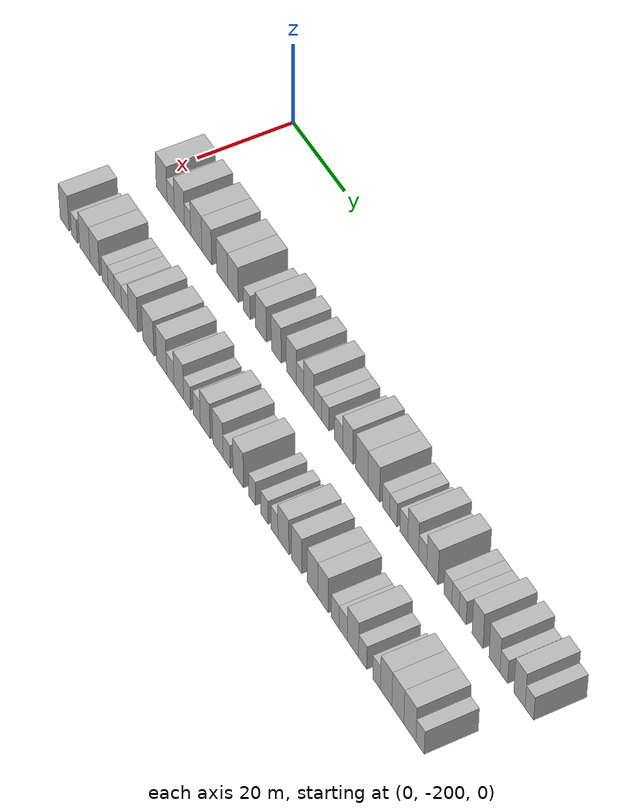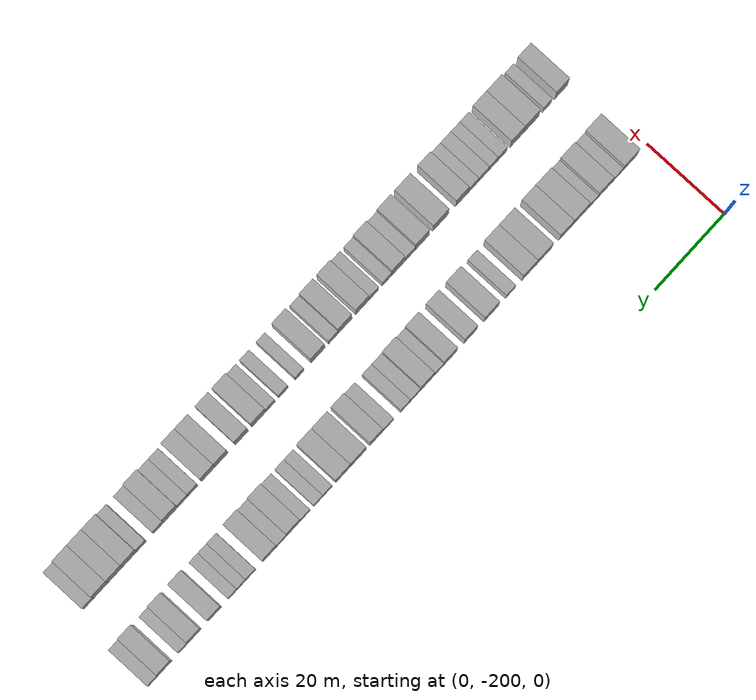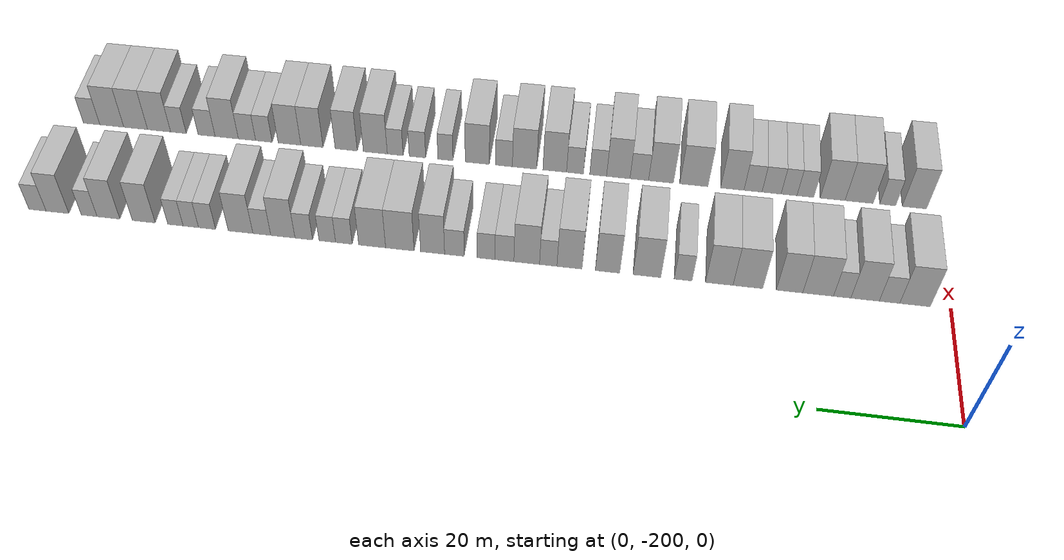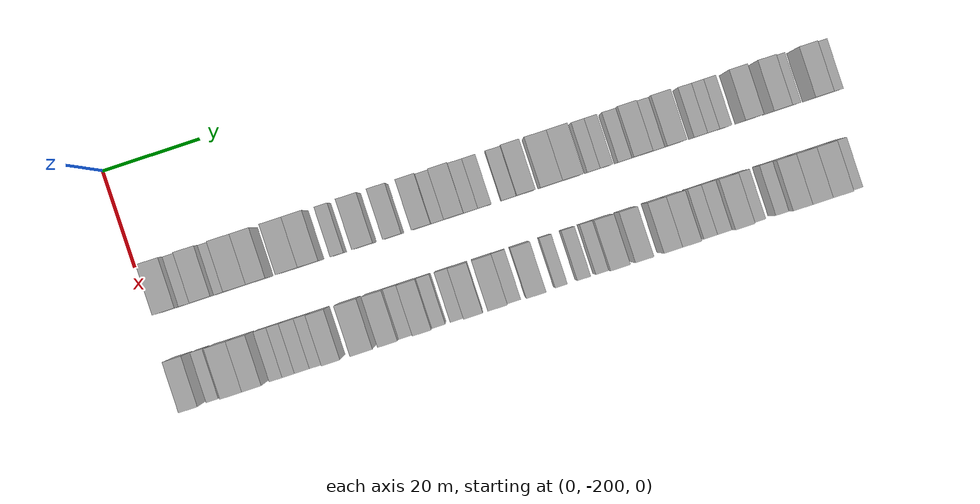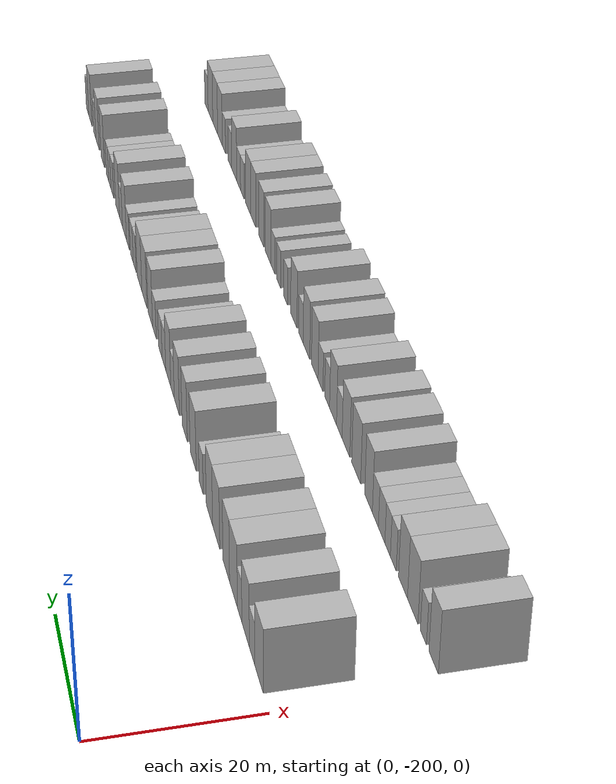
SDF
<sdf version="1.6">
 <world name="default">
  <model name="building_1">
   <static>1</static>
   <pose>25.0000 -194.7960 0 0.000000 0.000000 0.000000</pose>
   <link name="link">
    <pose>0 0 4.50 0 0 0</pose>
    <collision name="collision"><geometry><box><size>10.0000 4.4080 9.0000</size></box></geometry></collision>
    <visual name="visual">
     <cast_shadows>0</cast_shadows>
     <geometry><box><size>10.0000 4.4080 9.0000</size></box></geometry>
     <material>
      <script>
       <uri>model://HANNAS_wall/materials/scripts</uri>
       <uri>model://HANNAS_wall/materials/textures</uri>
       <name>vrc/HANNAS_wall</name>
      </script>
     </material>
    </visual>
   </link>
  </model>
  <model name="building_2">
   <static>1</static>
   <pose>25.0000 -191.1153 0 0.000000 0.000000 0.000000</pose>
   <link name="link">
    <pose>0 0 3.00 0 0 0</pose>
    <collision name="collision"><geometry><box><size>10.0000 2.9534 6.0000</size></box></geometry></collision>
    <visual name="visual">
     <cast_shadows>0</cast_shadows>
     <geometry><box><size>10.0000 2.9534 6.0000</size></box></geometry>
     <material>
      <script>
       <uri>model://HANNAS_wall/materials/scripts</uri>
       <uri>model://HANNAS_wall/materials/textures</uri>
       <name>vrc/HANNAS_wall</name>
      </script>
     </material>
    </visual>
   </link>
  </model>
  <model name="building_3">
   <static>1</static>
   <pose>25.0000 -187.5789 0 0.000000 0.000000 0.000000</pose>
   <link name="link">
    <pose>0 0 4.50 0 0 0</pose>
    <collision name="collision"><geometry><box><size>10.0000 4.1194 9.0000</size></box></geometry></collision>
    <visual name="visual">
     <cast_shadows>0</cast_shadows>
     <geometry><box><size>10.0000 4.1194 9.0000</size></box></geometry>
     <material>
      <script>
       <uri>model://HANNAS_wall/materials/scripts</uri>
       <uri>model://HANNAS_wall/materials/textures</uri>
       <name>vrc/HANNAS_wall</name>
      </script>
     </material>
    </visual>
   </link>
  </model>
  <model name="building_4">
   <static>1</static>
   <pose>25.0000 -184.2555 0 0.000000 0.000000 0.000000</pose>
   <link name="link">
    <pose>0 0 3.00 0 0 0</pose>
    <collision name="collision"><geometry><box><size>10.0000 2.5275 6.0000</size></box></geometry></collision>
    <visual name="visual">
     <cast_shadows>0</cast_shadows>
     <geometry><box><size>10.0000 2.5275 6.0000</size></box></geometry>
     <material>
      <script>
       <uri>model://HANNAS_wall/materials/scripts</uri>
       <uri>model://HANNAS_wall/materials/textures</uri>
       <name>vrc/HANNAS_wall</name>
      </script>
     </material>
    </visual>
   </link>
  </model>
  <model name="building_5">
   <static>1</static>
   <pose>25.0000 -180.7464 0 0.000000 0.000000 0.000000</pose>
   <link name="link">
    <pose>0 0 4.50 0 0 0</pose>
    <collision name="collision"><geometry><box><size>10.0000 4.4906 9.0000</size></box></geometry></collision>
    <visual name="visual">
     <cast_shadows>0</cast_shadows>
     <geometry><box><size>10.0000 4.4906 9.0000</size></box></geometry>
     <material>
      <script>
       <uri>model://HANNAS_wall/materials/scripts</uri>
       <uri>model://HANNAS_wall/materials/textures</uri>
       <name>vrc/HANNAS_wall</name>
      </script>
     </material>
    </visual>
   </link>
  </model>
  <model name="building_6">
   <static>1</static>
   <pose>25.0000 -176.5654 0 0.000000 0.000000 0.000000</pose>
   <link name="link">
    <pose>0 0 4.50 0 0 0</pose>
    <collision name="collision"><geometry><box><size>10.0000 3.8715 9.0000</size></box></geometry></collision>
    <visual name="visual">
     <cast_shadows>0</cast_shadows>
     <geometry><box><size>10.0000 3.8715 9.0000</size></box></geometry>
     <material>
      <script>
       <uri>model://HANNAS_wall/materials/scripts</uri>
       <uri>model://HANNAS_wall/materials/textures</uri>
       <name>vrc/HANNAS_wall</name>
      </script>
     </material>
    </visual>
   </link>
  </model>
  <model name="building_7">
   <static>1</static>
   <pose>25.0000 -170.4385 0 0.000000 0.000000 0.000000</pose>
   <link name="link">
    <pose>0 0 4.50 0 0 0</pose>
    <collision name="collision"><geometry><box><size>10.0000 4.3822 9.0000</size></box></geometry></collision>
    <visual name="visual">
     <cast_shadows>0</cast_shadows>
     <geometry><box><size>10.0000 4.3822 9.0000</size></box></geometry>
     <material>
      <script>
       <uri>model://HANNAS_wall/materials/scripts</uri>
       <uri>model://HANNAS_wall/materials/textures</uri>
       <name>vrc/HANNAS_wall</name>
      </script>
     </material>
    </visual>
   </link>
  </model>
  <model name="building_8">
   <static>1</static>
   <pose>25.0000 -166.2116 0 0.000000 0.000000 0.000000</pose>
   <link name="link">
    <pose>0 0 4.50 0 0 0</pose>
    <collision name="collision"><geometry><box><size>10.0000 4.0716 9.0000</size></box></geometry></collision>
    <visual name="visual">
     <cast_shadows>0</cast_shadows>
     <geometry><box><size>10.0000 4.0716 9.0000</size></box></geometry>
     <material>
      <script>
       <uri>model://HANNAS_wall/materials/scripts</uri>
       <uri>model://HANNAS_wall/materials/textures</uri>
       <name>vrc/HANNAS_wall</name>
      </script>
     </material>
    </visual>
   </link>
  </model>
  <model name="building_9">
   <static>1</static>
   <pose>25.0000 -160.8473 0 0.000000 0.000000 0.000000</pose>
   <link name="link">
    <pose>0 0 3.00 0 0 0</pose>
    <collision name="collision"><geometry><box><size>10.0000 2.6569 6.0000</size></box></geometry></collision>
    <visual name="visual">
     <cast_shadows>0</cast_shadows>
     <geometry><box><size>10.0000 2.6569 6.0000</size></box></geometry>
     <material>
      <script>
       <uri>model://HANNAS_wall/materials/scripts</uri>
       <uri>model://HANNAS_wall/materials/textures</uri>
       <name>vrc/HANNAS_wall</name>
      </script>
     </material>
    </visual>
   </link>
  </model>
  <model name="building_10">
   <static>1</static>
   <pose>25.0000 -155.4510 0 0.000000 0.000000 0.000000</pose>
   <link name="link">
    <pose>0 0 4.50 0 0 0</pose>
    <collision name="collision"><geometry><box><size>10.0000 4.1359 9.0000</size></box></geometry></collision>
    <visual name="visual">
     <cast_shadows>0</cast_shadows>
     <geometry><box><size>10.0000 4.1359 9.0000</size></box></geometry>
     <material>
      <script>
       <uri>model://HANNAS_wall/materials/scripts</uri>
       <uri>model://HANNAS_wall/materials/textures</uri>
       <name>vrc/HANNAS_wall</name>
      </script>
     </material>
    </visual>
   </link>
  </model>
  <model name="building_11">
   <static>1</static>
   <pose>25.0000 -149.5526 0 0.000000 0.000000 0.000000</pose>
   <link name="link">
    <pose>0 0 4.50 0 0 0</pose>
    <collision name="collision"><geometry><box><size>10.0000 3.6609 9.0000</size></box></geometry></collision>
    <visual name="visual">
     <cast_shadows>0</cast_shadows>
     <geometry><box><size>10.0000 3.6609 9.0000</size></box></geometry>
     <material>
      <script>
       <uri>model://HANNAS_wall/materials/scripts</uri>
       <uri>model://HANNAS_wall/materials/textures</uri>
       <name>vrc/HANNAS_wall</name>
      </script>
     </material>
    </visual>
   </link>
  </model>
  <model name="building_12">
   <static>1</static>
   <pose>25.0000 -143.8289 0 0.000000 0.000000 0.000000</pose>
   <link name="link">
    <pose>0 0 4.50 0 0 0</pose>
    <collision name="collision"><geometry><box><size>10.0000 3.7866 9.0000</size></box></geometry></collision>
    <visual name="visual">
     <cast_shadows>0</cast_shadows>
     <geometry><box><size>10.0000 3.7866 9.0000</size></box></geometry>
     <material>
      <script>
       <uri>model://HANNAS_wall/materials/scripts</uri>
       <uri>model://HANNAS_wall/materials/textures</uri>
       <name>vrc/HANNAS_wall</name>
      </script>
     </material>
    </visual>
   </link>
  </model>
  <model name="building_13">
   <static>1</static>
   <pose>25.0000 -140.6189 0 0.000000 0.000000 0.000000</pose>
   <link name="link">
    <pose>0 0 3.00 0 0 0</pose>
    <collision name="collision"><geometry><box><size>10.0000 2.6333 6.0000</size></box></geometry></collision>
    <visual name="visual">
     <cast_shadows>0</cast_shadows>
     <geometry><box><size>10.0000 2.6333 6.0000</size></box></geometry>
     <material>
      <script>
       <uri>model://HANNAS_wall/materials/scripts</uri>
       <uri>model://HANNAS_wall/materials/textures</uri>
       <name>vrc/HANNAS_wall</name>
      </script>
     </material>
    </visual>
   </link>
  </model>
  <model name="building_14">
   <static>1</static>
   <pose>25.0000 -137.3544 0 0.000000 0.000000 0.000000</pose>
   <link name="link">
    <pose>0 0 4.50 0 0 0</pose>
    <collision name="collision"><geometry><box><size>10.0000 3.8957 9.0000</size></box></geometry></collision>
    <visual name="visual">
     <cast_shadows>0</cast_shadows>
     <geometry><box><size>10.0000 3.8957 9.0000</size></box></geometry>
     <material>
      <script>
       <uri>model://HANNAS_wall/materials/scripts</uri>
       <uri>model://HANNAS_wall/materials/textures</uri>
       <name>vrc/HANNAS_wall</name>
      </script>
     </material>
    </visual>
   </link>
  </model>
  <model name="building_15">
   <static>1</static>
   <pose>25.0000 -133.9715 0 0.000000 0.000000 0.000000</pose>
   <link name="link">
    <pose>0 0 3.00 0 0 0</pose>
    <collision name="collision"><geometry><box><size>10.0000 2.8702 6.0000</size></box></geometry></collision>
    <visual name="visual">
     <cast_shadows>0</cast_shadows>
     <geometry><box><size>10.0000 2.8702 6.0000</size></box></geometry>
     <material>
      <script>
       <uri>model://HANNAS_wall/materials/scripts</uri>
       <uri>model://HANNAS_wall/materials/textures</uri>
       <name>vrc/HANNAS_wall</name>
      </script>
     </material>
    </visual>
   </link>
  </model>
  <model name="building_16">
   <static>1</static>
   <pose>25.0000 -131.1850 0 0.000000 0.000000 0.000000</pose>
   <link name="link">
    <pose>0 0 3.00 0 0 0</pose>
    <collision name="collision"><geometry><box><size>10.0000 2.7028 6.0000</size></box></geometry></collision>
    <visual name="visual">
     <cast_shadows>0</cast_shadows>
     <geometry><box><size>10.0000 2.7028 6.0000</size></box></geometry>
     <material>
      <script>
       <uri>model://HANNAS_wall/materials/scripts</uri>
       <uri>model://HANNAS_wall/materials/textures</uri>
       <name>vrc/HANNAS_wall</name>
      </script>
     </material>
    </visual>
   </link>
  </model>
  <model name="building_17">
   <static>1</static>
   <pose>25.0000 -126.3349 0 0.000000 0.000000 0.000000</pose>
   <link name="link">
    <pose>0 0 3.00 0 0 0</pose>
    <collision name="collision"><geometry><box><size>10.0000 2.9974 6.0000</size></box></geometry></collision>
    <visual name="visual">
     <cast_shadows>0</cast_shadows>
     <geometry><box><size>10.0000 2.9974 6.0000</size></box></geometry>
     <material>
      <script>
       <uri>model://HANNAS_wall/materials/scripts</uri>
       <uri>model://HANNAS_wall/materials/textures</uri>
       <name>vrc/HANNAS_wall</name>
      </script>
     </material>
    </visual>
   </link>
  </model>
  <model name="building_18">
   <static>1</static>
   <pose>25.0000 -122.9939 0 0.000000 0.000000 0.000000</pose>
   <link name="link">
    <pose>0 0 4.50 0 0 0</pose>
    <collision name="collision"><geometry><box><size>10.0000 3.6844 9.0000</size></box></geometry></collision>
    <visual name="visual">
     <cast_shadows>0</cast_shadows>
     <geometry><box><size>10.0000 3.6844 9.0000</size></box></geometry>
     <material>
      <script>
       <uri>model://HANNAS_wall/materials/scripts</uri>
       <uri>model://HANNAS_wall/materials/textures</uri>
       <name>vrc/HANNAS_wall</name>
      </script>
     </material>
    </visual>
   </link>
  </model>
  <model name="building_19">
   <static>1</static>
   <pose>25.0000 -117.9512 0 0.000000 0.000000 0.000000</pose>
   <link name="link">
    <pose>0 0 4.50 0 0 0</pose>
    <collision name="collision"><geometry><box><size>10.0000 4.4010 9.0000</size></box></geometry></collision>
    <visual name="visual">
     <cast_shadows>0</cast_shadows>
     <geometry><box><size>10.0000 4.4010 9.0000</size></box></geometry>
     <material>
      <script>
       <uri>model://HANNAS_wall/materials/scripts</uri>
       <uri>model://HANNAS_wall/materials/textures</uri>
       <name>vrc/HANNAS_wall</name>
      </script>
     </material>
    </visual>
   </link>
  </model>
  <model name="building_20">
   <static>1</static>
   <pose>25.0000 -113.6658 0 0.000000 0.000000 0.000000</pose>
   <link name="link">
    <pose>0 0 4.50 0 0 0</pose>
    <collision name="collision"><geometry><box><size>10.0000 4.1699 9.0000</size></box></geometry></collision>
    <visual name="visual">
     <cast_shadows>0</cast_shadows>
     <geometry><box><size>10.0000 4.1699 9.0000</size></box></geometry>
     <material>
      <script>
       <uri>model://HANNAS_wall/materials/scripts</uri>
       <uri>model://HANNAS_wall/materials/textures</uri>
       <name>vrc/HANNAS_wall</name>
      </script>
     </material>
    </visual>
   </link>
  </model>
  <model name="building_21">
   <static>1</static>
   <pose>25.0000 -109.2835 0 0.000000 0.000000 0.000000</pose>
   <link name="link">
    <pose>0 0 3.00 0 0 0</pose>
    <collision name="collision"><geometry><box><size>10.0000 2.5947 6.0000</size></box></geometry></collision>
    <visual name="visual">
     <cast_shadows>0</cast_shadows>
     <geometry><box><size>10.0000 2.5947 6.0000</size></box></geometry>
     <material>
      <script>
       <uri>model://HANNAS_wall/materials/scripts</uri>
       <uri>model://HANNAS_wall/materials/textures</uri>
       <name>vrc/HANNAS_wall</name>
      </script>
     </material>
    </visual>
   </link>
  </model>
  <model name="building_22">
   <static>1</static>
   <pose>25.0000 -106.6985 0 0.000000 0.000000 0.000000</pose>
   <link name="link">
    <pose>0 0 3.00 0 0 0</pose>
    <collision name="collision"><geometry><box><size>10.0000 2.5752 6.0000</size></box></geometry></collision>
    <visual name="visual">
     <cast_shadows>0</cast_shadows>
     <geometry><box><size>10.0000 2.5752 6.0000</size></box></geometry>
     <material>
      <script>
       <uri>model://HANNAS_wall/materials/scripts</uri>
       <uri>model://HANNAS_wall/materials/textures</uri>
       <name>vrc/HANNAS_wall</name>
      </script>
     </material>
    </visual>
   </link>
  </model>
  <model name="building_23">
   <static>1</static>
   <pose>25.0000 -103.0268 0 0.000000 0.000000 0.000000</pose>
   <link name="link">
    <pose>0 0 3.00 0 0 0</pose>
    <collision name="collision"><geometry><box><size>10.0000 2.7683 6.0000</size></box></geometry></collision>
    <visual name="visual">
     <cast_shadows>0</cast_shadows>
     <geometry><box><size>10.0000 2.7683 6.0000</size></box></geometry>
     <material>
      <script>
       <uri>model://HANNAS_wall/materials/scripts</uri>
       <uri>model://HANNAS_wall/materials/textures</uri>
       <name>vrc/HANNAS_wall</name>
      </script>
     </material>
    </visual>
   </link>
  </model>
  <model name="building_24">
   <static>1</static>
   <pose>25.0000 -99.7473 0 0.000000 0.000000 0.000000</pose>
   <link name="link">
    <pose>0 0 4.50 0 0 0</pose>
    <collision name="collision"><geometry><box><size>10.0000 3.7907 9.0000</size></box></geometry></collision>
    <visual name="visual">
     <cast_shadows>0</cast_shadows>
     <geometry><box><size>10.0000 3.7907 9.0000</size></box></geometry>
     <material>
      <script>
       <uri>model://HANNAS_wall/materials/scripts</uri>
       <uri>model://HANNAS_wall/materials/textures</uri>
       <name>vrc/HANNAS_wall</name>
      </script>
     </material>
    </visual>
   </link>
  </model>
  <model name="building_25">
   <static>1</static>
   <pose>25.0000 -96.4427 0 0.000000 0.000000 0.000000</pose>
   <link name="link">
    <pose>0 0 3.00 0 0 0</pose>
    <collision name="collision"><geometry><box><size>10.0000 2.8184 6.0000</size></box></geometry></collision>
    <visual name="visual">
     <cast_shadows>0</cast_shadows>
     <geometry><box><size>10.0000 2.8184 6.0000</size></box></geometry>
     <material>
      <script>
       <uri>model://HANNAS_wall/materials/scripts</uri>
       <uri>model://HANNAS_wall/materials/textures</uri>
       <name>vrc/HANNAS_wall</name>
      </script>
     </material>
    </visual>
   </link>
  </model>
  <model name="building_26">
   <static>1</static>
   <pose>25.0000 -93.0853 0 0.000000 0.000000 0.000000</pose>
   <link name="link">
    <pose>0 0 4.50 0 0 0</pose>
    <collision name="collision"><geometry><box><size>10.0000 3.8963 9.0000</size></box></geometry></collision>
    <visual name="visual">
     <cast_shadows>0</cast_shadows>
     <geometry><box><size>10.0000 3.8963 9.0000</size></box></geometry>
     <material>
      <script>
       <uri>model://HANNAS_wall/materials/scripts</uri>
       <uri>model://HANNAS_wall/materials/textures</uri>
       <name>vrc/HANNAS_wall</name>
      </script>
     </material>
    </visual>
   </link>
  </model>
  <model name="building_27">
   <static>1</static>
   <pose>25.0000 -87.7885 0 0.000000 0.000000 0.000000</pose>
   <link name="link">
    <pose>0 0 3.00 0 0 0</pose>
    <collision name="collision"><geometry><box><size>10.0000 2.6974 6.0000</size></box></geometry></collision>
    <visual name="visual">
     <cast_shadows>0</cast_shadows>
     <geometry><box><size>10.0000 2.6974 6.0000</size></box></geometry>
     <material>
      <script>
       <uri>model://HANNAS_wall/materials/scripts</uri>
       <uri>model://HANNAS_wall/materials/textures</uri>
       <name>vrc/HANNAS_wall</name>
      </script>
     </material>
    </visual>
   </link>
  </model>
  <model name="building_28">
   <static>1</static>
   <pose>25.0000 -85.2191 0 0.000000 0.000000 0.000000</pose>
   <link name="link">
    <pose>0 0 3.00 0 0 0</pose>
    <collision name="collision"><geometry><box><size>10.0000 2.4414 6.0000</size></box></geometry></collision>
    <visual name="visual">
     <cast_shadows>0</cast_shadows>
     <geometry><box><size>10.0000 2.4414 6.0000</size></box></geometry>
     <material>
      <script>
       <uri>model://HANNAS_wall/materials/scripts</uri>
       <uri>model://HANNAS_wall/materials/textures</uri>
       <name>vrc/HANNAS_wall</name>
      </script>
     </material>
    </visual>
   </link>
  </model>
  <model name="building_29">
   <static>1</static>
   <pose>25.0000 -82.7759 0 0.000000 0.000000 0.000000</pose>
   <link name="link">
    <pose>0 0 3.00 0 0 0</pose>
    <collision name="collision"><geometry><box><size>10.0000 2.4450 6.0000</size></box></geometry></collision>
    <visual name="visual">
     <cast_shadows>0</cast_shadows>
     <geometry><box><size>10.0000 2.4450 6.0000</size></box></geometry>
     <material>
      <script>
       <uri>model://HANNAS_wall/materials/scripts</uri>
       <uri>model://HANNAS_wall/materials/textures</uri>
       <name>vrc/HANNAS_wall</name>
      </script>
     </material>
    </visual>
   </link>
  </model>
  <model name="building_30">
   <static>1</static>
   <pose>25.0000 -77.7228 0 0.000000 0.000000 0.000000</pose>
   <link name="link">
    <pose>0 0 4.50 0 0 0</pose>
    <collision name="collision"><geometry><box><size>10.0000 3.6612 9.0000</size></box></geometry></collision>
    <visual name="visual">
     <cast_shadows>0</cast_shadows>
     <geometry><box><size>10.0000 3.6612 9.0000</size></box></geometry>
     <material>
      <script>
       <uri>model://HANNAS_wall/materials/scripts</uri>
       <uri>model://HANNAS_wall/materials/textures</uri>
       <name>vrc/HANNAS_wall</name>
      </script>
     </material>
    </visual>
   </link>
  </model>
  <model name="building_31">
   <static>1</static>
   <pose>25.0000 -72.0652 0 0.000000 0.000000 0.000000</pose>
   <link name="link">
    <pose>0 0 4.50 0 0 0</pose>
    <collision name="collision"><geometry><box><size>10.0000 3.6539 9.0000</size></box></geometry></collision>
    <visual name="visual">
     <cast_shadows>0</cast_shadows>
     <geometry><box><size>10.0000 3.6539 9.0000</size></box></geometry>
     <material>
      <script>
       <uri>model://HANNAS_wall/materials/scripts</uri>
       <uri>model://HANNAS_wall/materials/textures</uri>
       <name>vrc/HANNAS_wall</name>
      </script>
     </material>
    </visual>
   </link>
  </model>
  <model name="building_32">
   <static>1</static>
   <pose>25.0000 -68.9615 0 0.000000 0.000000 0.000000</pose>
   <link name="link">
    <pose>0 0 3.00 0 0 0</pose>
    <collision name="collision"><geometry><box><size>10.0000 2.5535 6.0000</size></box></geometry></collision>
    <visual name="visual">
     <cast_shadows>0</cast_shadows>
     <geometry><box><size>10.0000 2.5535 6.0000</size></box></geometry>
     <material>
      <script>
       <uri>model://HANNAS_wall/materials/scripts</uri>
       <uri>model://HANNAS_wall/materials/textures</uri>
       <name>vrc/HANNAS_wall</name>
      </script>
     </material>
    </visual>
   </link>
  </model>
  <model name="building_33">
   <static>1</static>
   <pose>25.0000 -63.8463 0 0.000000 0.000000 0.000000</pose>
   <link name="link">
    <pose>0 0 4.50 0 0 0</pose>
    <collision name="collision"><geometry><box><size>10.0000 3.6770 9.0000</size></box></geometry></collision>
    <visual name="visual">
     <cast_shadows>0</cast_shadows>
     <geometry><box><size>10.0000 3.6770 9.0000</size></box></geometry>
     <material>
      <script>
       <uri>model://HANNAS_wall/materials/scripts</uri>
       <uri>model://HANNAS_wall/materials/textures</uri>
       <name>vrc/HANNAS_wall</name>
      </script>
     </material>
    </visual>
   </link>
  </model>
  <model name="building_34">
   <static>1</static>
   <pose>25.0000 -60.6157 0 0.000000 0.000000 0.000000</pose>
   <link name="link">
    <pose>0 0 3.00 0 0 0</pose>
    <collision name="collision"><geometry><box><size>10.0000 2.7843 6.0000</size></box></geometry></collision>
    <visual name="visual">
     <cast_shadows>0</cast_shadows>
     <geometry><box><size>10.0000 2.7843 6.0000</size></box></geometry>
     <material>
      <script>
       <uri>model://HANNAS_wall/materials/scripts</uri>
       <uri>model://HANNAS_wall/materials/textures</uri>
       <name>vrc/HANNAS_wall</name>
      </script>
     </material>
    </visual>
   </link>
  </model>
  <model name="building_104">
   <static>1</static>
   <pose>44.0000 -196.1363 0 0.000000 0.000000 0.000000</pose>
   <link name="link">
    <pose>0 0 4.50 0 0 0</pose>
    <collision name="collision"><geometry><box><size>10.0000 3.7273 9.0000</size></box></geometry></collision>
    <visual name="visual">
     <cast_shadows>0</cast_shadows>
     <geometry><box><size>10.0000 3.7273 9.0000</size></box></geometry>
     <material>
      <script>
       <uri>model://HANNAS_wall/materials/scripts</uri>
       <uri>model://HANNAS_wall/materials/textures</uri>
       <name>vrc/HANNAS_wall</name>
      </script>
     </material>
    </visual>
   </link>
  </model>
  <model name="building_105">
   <static>1</static>
   <pose>44.0000 -192.0449 0 0.000000 0.000000 0.000000</pose>
   <link name="link">
    <pose>0 0 3.00 0 0 0</pose>
    <collision name="collision"><geometry><box><size>10.0000 2.4555 6.0000</size></box></geometry></collision>
    <visual name="visual">
     <cast_shadows>0</cast_shadows>
     <geometry><box><size>10.0000 2.4555 6.0000</size></box></geometry>
     <material>
      <script>
       <uri>model://HANNAS_wall/materials/scripts</uri>
       <uri>model://HANNAS_wall/materials/textures</uri>
       <name>vrc/HANNAS_wall</name>
      </script>
     </material>
    </visual>
   </link>
  </model>
  <model name="building_106">
   <static>1</static>
   <pose>44.0000 -187.6453 0 0.000000 0.000000 0.000000</pose>
   <link name="link">
    <pose>0 0 4.50 0 0 0</pose>
    <collision name="collision"><geometry><box><size>10.0000 4.3438 9.0000</size></box></geometry></collision>
    <visual name="visual">
     <cast_shadows>0</cast_shadows>
     <geometry><box><size>10.0000 4.3438 9.0000</size></box></geometry>
     <material>
      <script>
       <uri>model://HANNAS_wall/materials/scripts</uri>
       <uri>model://HANNAS_wall/materials/textures</uri>
       <name>vrc/HANNAS_wall</name>
      </script>
     </material>
    </visual>
   </link>
  </model>
  <model name="building_107">
   <static>1</static>
   <pose>44.0000 -183.5447 0 0.000000 0.000000 0.000000</pose>
   <link name="link">
    <pose>0 0 4.50 0 0 0</pose>
    <collision name="collision"><geometry><box><size>10.0000 3.8574 9.0000</size></box></geometry></collision>
    <visual name="visual">
     <cast_shadows>0</cast_shadows>
     <geometry><box><size>10.0000 3.8574 9.0000</size></box></geometry>
     <material>
      <script>
       <uri>model://HANNAS_wall/materials/scripts</uri>
       <uri>model://HANNAS_wall/materials/textures</uri>
       <name>vrc/HANNAS_wall</name>
      </script>
     </material>
    </visual>
   </link>
  </model>
  <model name="building_108">
   <static>1</static>
   <pose>44.0000 -179.3143 0 0.000000 0.000000 0.000000</pose>
   <link name="link">
    <pose>0 0 3.00 0 0 0</pose>
    <collision name="collision"><geometry><box><size>10.0000 2.6033 6.0000</size></box></geometry></collision>
    <visual name="visual">
     <cast_shadows>0</cast_shadows>
     <geometry><box><size>10.0000 2.6033 6.0000</size></box></geometry>
     <material>
      <script>
       <uri>model://HANNAS_wall/materials/scripts</uri>
       <uri>model://HANNAS_wall/materials/textures</uri>
       <name>vrc/HANNAS_wall</name>
      </script>
     </material>
    </visual>
   </link>
  </model>
  <model name="building_109">
   <static>1</static>
   <pose>44.0000 -176.7770 0 0.000000 0.000000 0.000000</pose>
   <link name="link">
    <pose>0 0 3.00 0 0 0</pose>
    <collision name="collision"><geometry><box><size>10.0000 2.4714 6.0000</size></box></geometry></collision>
    <visual name="visual">
     <cast_shadows>0</cast_shadows>
     <geometry><box><size>10.0000 2.4714 6.0000</size></box></geometry>
     <material>
      <script>
       <uri>model://HANNAS_wall/materials/scripts</uri>
       <uri>model://HANNAS_wall/materials/textures</uri>
       <name>vrc/HANNAS_wall</name>
      </script>
     </material>
    </visual>
   </link>
  </model>
  <model name="building_110">
   <static>1</static>
   <pose>44.0000 -174.0483 0 0.000000 0.000000 0.000000</pose>
   <link name="link">
    <pose>0 0 3.00 0 0 0</pose>
    <collision name="collision"><geometry><box><size>10.0000 2.9860 6.0000</size></box></geometry></collision>
    <visual name="visual">
     <cast_shadows>0</cast_shadows>
     <geometry><box><size>10.0000 2.9860 6.0000</size></box></geometry>
     <material>
      <script>
       <uri>model://HANNAS_wall/materials/scripts</uri>
       <uri>model://HANNAS_wall/materials/textures</uri>
       <name>vrc/HANNAS_wall</name>
      </script>
     </material>
    </visual>
   </link>
  </model>
  <model name="building_111">
   <static>1</static>
   <pose>44.0000 -171.1443 0 0.000000 0.000000 0.000000</pose>
   <link name="link">
    <pose>0 0 3.00 0 0 0</pose>
    <collision name="collision"><geometry><box><size>10.0000 2.8219 6.0000</size></box></geometry></collision>
    <visual name="visual">
     <cast_shadows>0</cast_shadows>
     <geometry><box><size>10.0000 2.8219 6.0000</size></box></geometry>
     <material>
      <script>
       <uri>model://HANNAS_wall/materials/scripts</uri>
       <uri>model://HANNAS_wall/materials/textures</uri>
       <name>vrc/HANNAS_wall</name>
      </script>
     </material>
    </visual>
   </link>
  </model>
  <model name="building_112">
   <static>1</static>
   <pose>44.0000 -167.9012 0 0.000000 0.000000 0.000000</pose>
   <link name="link">
    <pose>0 0 4.50 0 0 0</pose>
    <collision name="collision"><geometry><box><size>10.0000 3.6642 9.0000</size></box></geometry></collision>
    <visual name="visual">
     <cast_shadows>0</cast_shadows>
     <geometry><box><size>10.0000 3.6642 9.0000</size></box></geometry>
     <material>
      <script>
       <uri>model://HANNAS_wall/materials/scripts</uri>
       <uri>model://HANNAS_wall/materials/textures</uri>
       <name>vrc/HANNAS_wall</name>
      </script>
     </material>
    </visual>
   </link>
  </model>
  <model name="building_113">
   <static>1</static>
   <pose>44.0000 -161.8467 0 0.000000 0.000000 0.000000</pose>
   <link name="link">
    <pose>0 0 4.50 0 0 0</pose>
    <collision name="collision"><geometry><box><size>10.0000 4.4449 9.0000</size></box></geometry></collision>
    <visual name="visual">
     <cast_shadows>0</cast_shadows>
     <geometry><box><size>10.0000 4.4449 9.0000</size></box></geometry>
     <material>
      <script>
       <uri>model://HANNAS_wall/materials/scripts</uri>
       <uri>model://HANNAS_wall/materials/textures</uri>
       <name>vrc/HANNAS_wall</name>
      </script>
     </material>
    </visual>
   </link>
  </model>
  <model name="building_114">
   <static>1</static>
   <pose>44.0000 -156.6502 0 0.000000 0.000000 0.000000</pose>
   <link name="link">
    <pose>0 0 4.50 0 0 0</pose>
    <collision name="collision"><geometry><box><size>10.0000 3.9481 9.0000</size></box></geometry></collision>
    <visual name="visual">
     <cast_shadows>0</cast_shadows>
     <geometry><box><size>10.0000 3.9481 9.0000</size></box></geometry>
     <material>
      <script>
       <uri>model://HANNAS_wall/materials/scripts</uri>
       <uri>model://HANNAS_wall/materials/textures</uri>
       <name>vrc/HANNAS_wall</name>
      </script>
     </material>
    </visual>
   </link>
  </model>
  <model name="building_115">
   <static>1</static>
   <pose>44.0000 -153.2066 0 0.000000 0.000000 0.000000</pose>
   <link name="link">
    <pose>0 0 3.00 0 0 0</pose>
    <collision name="collision"><geometry><box><size>10.0000 2.9392 6.0000</size></box></geometry></collision>
    <visual name="visual">
     <cast_shadows>0</cast_shadows>
     <geometry><box><size>10.0000 2.9392 6.0000</size></box></geometry>
     <material>
      <script>
       <uri>model://HANNAS_wall/materials/scripts</uri>
       <uri>model://HANNAS_wall/materials/textures</uri>
       <name>vrc/HANNAS_wall</name>
      </script>
     </material>
    </visual>
   </link>
  </model>
  <model name="building_116">
   <static>1</static>
   <pose>44.0000 -149.8686 0 0.000000 0.000000 0.000000</pose>
   <link name="link">
    <pose>0 0 4.50 0 0 0</pose>
    <collision name="collision"><geometry><box><size>10.0000 3.7367 9.0000</size></box></geometry></collision>
    <visual name="visual">
     <cast_shadows>0</cast_shadows>
     <geometry><box><size>10.0000 3.7367 9.0000</size></box></geometry>
     <material>
      <script>
       <uri>model://HANNAS_wall/materials/scripts</uri>
       <uri>model://HANNAS_wall/materials/textures</uri>
       <name>vrc/HANNAS_wall</name>
      </script>
     </material>
    </visual>
   </link>
  </model>
  <model name="building_117">
   <static>1</static>
   <pose>44.0000 -146.6567 0 0.000000 0.000000 0.000000</pose>
   <link name="link">
    <pose>0 0 3.00 0 0 0</pose>
    <collision name="collision"><geometry><box><size>10.0000 2.6870 6.0000</size></box></geometry></collision>
    <visual name="visual">
     <cast_shadows>0</cast_shadows>
     <geometry><box><size>10.0000 2.6870 6.0000</size></box></geometry>
     <material>
      <script>
       <uri>model://HANNAS_wall/materials/scripts</uri>
       <uri>model://HANNAS_wall/materials/textures</uri>
       <name>vrc/HANNAS_wall</name>
      </script>
     </material>
    </visual>
   </link>
  </model>
  <model name="building_118">
   <static>1</static>
   <pose>44.0000 -142.9554 0 0.000000 0.000000 0.000000</pose>
   <link name="link">
    <pose>0 0 3.00 0 0 0</pose>
    <collision name="collision"><geometry><box><size>10.0000 2.7157 6.0000</size></box></geometry></collision>
    <visual name="visual">
     <cast_shadows>0</cast_shadows>
     <geometry><box><size>10.0000 2.7157 6.0000</size></box></geometry>
     <material>
      <script>
       <uri>model://HANNAS_wall/materials/scripts</uri>
       <uri>model://HANNAS_wall/materials/textures</uri>
       <name>vrc/HANNAS_wall</name>
      </script>
     </material>
    </visual>
   </link>
  </model>
  <model name="building_119">
   <static>1</static>
   <pose>44.0000 -139.7017 0 0.000000 0.000000 0.000000</pose>
   <link name="link">
    <pose>0 0 4.50 0 0 0</pose>
    <collision name="collision"><geometry><box><size>10.0000 3.7917 9.0000</size></box></geometry></collision>
    <visual name="visual">
     <cast_shadows>0</cast_shadows>
     <geometry><box><size>10.0000 3.7917 9.0000</size></box></geometry>
     <material>
      <script>
       <uri>model://HANNAS_wall/materials/scripts</uri>
       <uri>model://HANNAS_wall/materials/textures</uri>
       <name>vrc/HANNAS_wall</name>
      </script>
     </material>
    </visual>
   </link>
  </model>
  <model name="building_120">
   <static>1</static>
   <pose>44.0000 -134.8475 0 0.000000 0.000000 0.000000</pose>
   <link name="link">
    <pose>0 0 4.50 0 0 0</pose>
    <collision name="collision"><geometry><box><size>10.0000 3.9168 9.0000</size></box></geometry></collision>
    <visual name="visual">
     <cast_shadows>0</cast_shadows>
     <geometry><box><size>10.0000 3.9168 9.0000</size></box></geometry>
     <material>
      <script>
       <uri>model://HANNAS_wall/materials/scripts</uri>
       <uri>model://HANNAS_wall/materials/textures</uri>
       <name>vrc/HANNAS_wall</name>
      </script>
     </material>
    </visual>
   </link>
  </model>
  <model name="building_121">
   <static>1</static>
   <pose>44.0000 -131.5248 0 0.000000 0.000000 0.000000</pose>
   <link name="link">
    <pose>0 0 3.00 0 0 0</pose>
    <collision name="collision"><geometry><box><size>10.0000 2.7288 6.0000</size></box></geometry></collision>
    <visual name="visual">
     <cast_shadows>0</cast_shadows>
     <geometry><box><size>10.0000 2.7288 6.0000</size></box></geometry>
     <material>
      <script>
       <uri>model://HANNAS_wall/materials/scripts</uri>
       <uri>model://HANNAS_wall/materials/textures</uri>
       <name>vrc/HANNAS_wall</name>
      </script>
     </material>
    </visual>
   </link>
  </model>
  <model name="building_122">
   <static>1</static>
   <pose>44.0000 -127.2032 0 0.000000 0.000000 0.000000</pose>
   <link name="link">
    <pose>0 0 4.50 0 0 0</pose>
    <collision name="collision"><geometry><box><size>10.0000 3.9143 9.0000</size></box></geometry></collision>
    <visual name="visual">
     <cast_shadows>0</cast_shadows>
     <geometry><box><size>10.0000 3.9143 9.0000</size></box></geometry>
     <material>
      <script>
       <uri>model://HANNAS_wall/materials/scripts</uri>
       <uri>model://HANNAS_wall/materials/textures</uri>
       <name>vrc/HANNAS_wall</name>
      </script>
     </material>
    </visual>
   </link>
  </model>
  <model name="building_123">
   <static>1</static>
   <pose>44.0000 -122.0223 0 0.000000 0.000000 0.000000</pose>
   <link name="link">
    <pose>0 0 3.00 0 0 0</pose>
    <collision name="collision"><geometry><box><size>10.0000 2.4476 6.0000</size></box></geometry></collision>
    <visual name="visual">
     <cast_shadows>0</cast_shadows>
     <geometry><box><size>10.0000 2.4476 6.0000</size></box></geometry>
     <material>
      <script>
       <uri>model://HANNAS_wall/materials/scripts</uri>
       <uri>model://HANNAS_wall/materials/textures</uri>
       <name>vrc/HANNAS_wall</name>
      </script>
     </material>
    </visual>
   </link>
  </model>
  <model name="building_124">
   <static>1</static>
   <pose>44.0000 -117.4541 0 0.000000 0.000000 0.000000</pose>
   <link name="link">
    <pose>0 0 3.00 0 0 0</pose>
    <collision name="collision"><geometry><box><size>10.0000 2.6889 6.0000</size></box></geometry></collision>
    <visual name="visual">
     <cast_shadows>0</cast_shadows>
     <geometry><box><size>10.0000 2.6889 6.0000</size></box></geometry>
     <material>
      <script>
       <uri>model://HANNAS_wall/materials/scripts</uri>
       <uri>model://HANNAS_wall/materials/textures</uri>
       <name>vrc/HANNAS_wall</name>
      </script>
     </material>
    </visual>
   </link>
  </model>
  <model name="building_125">
   <static>1</static>
   <pose>44.0000 -113.8106 0 0.000000 0.000000 0.000000</pose>
   <link name="link">
    <pose>0 0 3.00 0 0 0</pose>
    <collision name="collision"><geometry><box><size>10.0000 2.5981 6.0000</size></box></geometry></collision>
    <visual name="visual">
     <cast_shadows>0</cast_shadows>
     <geometry><box><size>10.0000 2.5981 6.0000</size></box></geometry>
     <material>
      <script>
       <uri>model://HANNAS_wall/materials/scripts</uri>
       <uri>model://HANNAS_wall/materials/textures</uri>
       <name>vrc/HANNAS_wall</name>
      </script>
     </material>
    </visual>
   </link>
  </model>
  <model name="building_126">
   <static>1</static>
   <pose>44.0000 -110.5420 0 0.000000 0.000000 0.000000</pose>
   <link name="link">
    <pose>0 0 4.50 0 0 0</pose>
    <collision name="collision"><geometry><box><size>10.0000 3.9389 9.0000</size></box></geometry></collision>
    <visual name="visual">
     <cast_shadows>0</cast_shadows>
     <geometry><box><size>10.0000 3.9389 9.0000</size></box></geometry>
     <material>
      <script>
       <uri>model://HANNAS_wall/materials/scripts</uri>
       <uri>model://HANNAS_wall/materials/textures</uri>
       <name>vrc/HANNAS_wall</name>
      </script>
     </material>
    </visual>
   </link>
  </model>
  <model name="building_127">
   <static>1</static>
   <pose>44.0000 -105.7428 0 0.000000 0.000000 0.000000</pose>
   <link name="link">
    <pose>0 0 4.50 0 0 0</pose>
    <collision name="collision"><geometry><box><size>10.0000 3.6596 9.0000</size></box></geometry></collision>
    <visual name="visual">
     <cast_shadows>0</cast_shadows>
     <geometry><box><size>10.0000 3.6596 9.0000</size></box></geometry>
     <material>
      <script>
       <uri>model://HANNAS_wall/materials/scripts</uri>
       <uri>model://HANNAS_wall/materials/textures</uri>
       <name>vrc/HANNAS_wall</name>
      </script>
     </material>
    </visual>
   </link>
  </model>
  <model name="building_128">
   <static>1</static>
   <pose>44.0000 -100.0651 0 0.000000 0.000000 0.000000</pose>
   <link name="link">
    <pose>0 0 4.50 0 0 0</pose>
    <collision name="collision"><geometry><box><size>10.0000 3.6957 9.0000</size></box></geometry></collision>
    <visual name="visual">
     <cast_shadows>0</cast_shadows>
     <geometry><box><size>10.0000 3.6957 9.0000</size></box></geometry>
     <material>
      <script>
       <uri>model://HANNAS_wall/materials/scripts</uri>
       <uri>model://HANNAS_wall/materials/textures</uri>
       <name>vrc/HANNAS_wall</name>
      </script>
     </material>
    </visual>
   </link>
  </model>
  <model name="building_129">
   <static>1</static>
   <pose>44.0000 -96.3312 0 0.000000 0.000000 0.000000</pose>
   <link name="link">
    <pose>0 0 4.50 0 0 0</pose>
    <collision name="collision"><geometry><box><size>10.0000 3.7721 9.0000</size></box></geometry></collision>
    <visual name="visual">
     <cast_shadows>0</cast_shadows>
     <geometry><box><size>10.0000 3.7721 9.0000</size></box></geometry>
     <material>
      <script>
       <uri>model://HANNAS_wall/materials/scripts</uri>
       <uri>model://HANNAS_wall/materials/textures</uri>
       <name>vrc/HANNAS_wall</name>
      </script>
     </material>
    </visual>
   </link>
  </model>
  <model name="building_130">
   <static>1</static>
   <pose>44.0000 -92.0681 0 0.000000 0.000000 0.000000</pose>
   <link name="link">
    <pose>0 0 3.00 0 0 0</pose>
    <collision name="collision"><geometry><box><size>10.0000 2.7540 6.0000</size></box></geometry></collision>
    <visual name="visual">
     <cast_shadows>0</cast_shadows>
     <geometry><box><size>10.0000 2.7540 6.0000</size></box></geometry>
     <material>
      <script>
       <uri>model://HANNAS_wall/materials/scripts</uri>
       <uri>model://HANNAS_wall/materials/textures</uri>
       <name>vrc/HANNAS_wall</name>
      </script>
     </material>
    </visual>
   </link>
  </model>
  <model name="building_131">
   <static>1</static>
   <pose>44.0000 -89.2417 0 0.000000 0.000000 0.000000</pose>
   <link name="link">
    <pose>0 0 3.00 0 0 0</pose>
    <collision name="collision"><geometry><box><size>10.0000 2.8987 6.0000</size></box></geometry></collision>
    <visual name="visual">
     <cast_shadows>0</cast_shadows>
     <geometry><box><size>10.0000 2.8987 6.0000</size></box></geometry>
     <material>
      <script>
       <uri>model://HANNAS_wall/materials/scripts</uri>
       <uri>model://HANNAS_wall/materials/textures</uri>
       <name>vrc/HANNAS_wall</name>
      </script>
     </material>
    </visual>
   </link>
  </model>
  <model name="building_132">
   <static>1</static>
   <pose>44.0000 -85.8401 0 0.000000 0.000000 0.000000</pose>
   <link name="link">
    <pose>0 0 4.50 0 0 0</pose>
    <collision name="collision"><geometry><box><size>10.0000 3.9045 9.0000</size></box></geometry></collision>
    <visual name="visual">
     <cast_shadows>0</cast_shadows>
     <geometry><box><size>10.0000 3.9045 9.0000</size></box></geometry>
     <material>
      <script>
       <uri>model://HANNAS_wall/materials/scripts</uri>
       <uri>model://HANNAS_wall/materials/textures</uri>
       <name>vrc/HANNAS_wall</name>
      </script>
     </material>
    </visual>
   </link>
  </model>
  <model name="building_133">
   <static>1</static>
   <pose>44.0000 -82.4518 0 0.000000 0.000000 0.000000</pose>
   <link name="link">
    <pose>0 0 3.00 0 0 0</pose>
    <collision name="collision"><geometry><box><size>10.0000 2.8721 6.0000</size></box></geometry></collision>
    <visual name="visual">
     <cast_shadows>0</cast_shadows>
     <geometry><box><size>10.0000 2.8721 6.0000</size></box></geometry>
     <material>
      <script>
       <uri>model://HANNAS_wall/materials/scripts</uri>
       <uri>model://HANNAS_wall/materials/textures</uri>
       <name>vrc/HANNAS_wall</name>
      </script>
     </material>
    </visual>
   </link>
  </model>
  <model name="building_134">
   <static>1</static>
   <pose>44.0000 -77.6939 0 0.000000 0.000000 0.000000</pose>
   <link name="link">
    <pose>0 0 3.00 0 0 0</pose>
    <collision name="collision"><geometry><box><size>10.0000 2.6436 6.0000</size></box></geometry></collision>
    <visual name="visual">
     <cast_shadows>0</cast_shadows>
     <geometry><box><size>10.0000 2.6436 6.0000</size></box></geometry>
     <material>
      <script>
       <uri>model://HANNAS_wall/materials/scripts</uri>
       <uri>model://HANNAS_wall/materials/textures</uri>
       <name>vrc/HANNAS_wall</name>
      </script>
     </material>
    </visual>
   </link>
  </model>
  <model name="building_135">
   <static>1</static>
   <pose>44.0000 -74.4200 0 0.000000 0.000000 0.000000</pose>
   <link name="link">
    <pose>0 0 4.50 0 0 0</pose>
    <collision name="collision"><geometry><box><size>10.0000 3.9043 9.0000</size></box></geometry></collision>
    <visual name="visual">
     <cast_shadows>0</cast_shadows>
     <geometry><box><size>10.0000 3.9043 9.0000</size></box></geometry>
     <material>
      <script>
       <uri>model://HANNAS_wall/materials/scripts</uri>
       <uri>model://HANNAS_wall/materials/textures</uri>
       <name>vrc/HANNAS_wall</name>
      </script>
     </material>
    </visual>
   </link>
  </model>
  <model name="building_136">
   <static>1</static>
   <pose>44.0000 -70.4455 0 0.000000 0.000000 0.000000</pose>
   <link name="link">
    <pose>0 0 4.50 0 0 0</pose>
    <collision name="collision"><geometry><box><size>10.0000 4.0446 9.0000</size></box></geometry></collision>
    <visual name="visual">
     <cast_shadows>0</cast_shadows>
     <geometry><box><size>10.0000 4.0446 9.0000</size></box></geometry>
     <material>
      <script>
       <uri>model://HANNAS_wall/materials/scripts</uri>
       <uri>model://HANNAS_wall/materials/textures</uri>
       <name>vrc/HANNAS_wall</name>
      </script>
     </material>
    </visual>
   </link>
  </model>
  <model name="building_137">
   <static>1</static>
   <pose>44.0000 -66.3867 0 0.000000 0.000000 0.000000</pose>
   <link name="link">
    <pose>0 0 4.50 0 0 0</pose>
    <collision name="collision"><geometry><box><size>10.0000 4.0730 9.0000</size></box></geometry></collision>
    <visual name="visual">
     <cast_shadows>0</cast_shadows>
     <geometry><box><size>10.0000 4.0730 9.0000</size></box></geometry>
     <material>
      <script>
       <uri>model://HANNAS_wall/materials/scripts</uri>
       <uri>model://HANNAS_wall/materials/textures</uri>
       <name>vrc/HANNAS_wall</name>
      </script>
     </material>
    </visual>
   </link>
  </model>
  <model name="building_138">
   <static>1</static>
   <pose>44.0000 -62.9434 0 0.000000 0.000000 0.000000</pose>
   <link name="link">
    <pose>0 0 3.00 0 0 0</pose>
    <collision name="collision"><geometry><box><size>10.0000 2.8137 6.0000</size></box></geometry></collision>
    <visual name="visual">
     <cast_shadows>0</cast_shadows>
     <geometry><box><size>10.0000 2.8137 6.0000</size></box></geometry>
     <material>
      <script>
       <uri>model://HANNAS_wall/materials/scripts</uri>
       <uri>model://HANNAS_wall/materials/textures</uri>
       <name>vrc/HANNAS_wall</name>
      </script>
     </material>
    </visual>
   </link>
  </model>
 </world>
</sdf>
